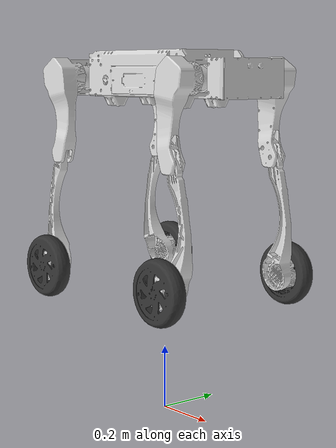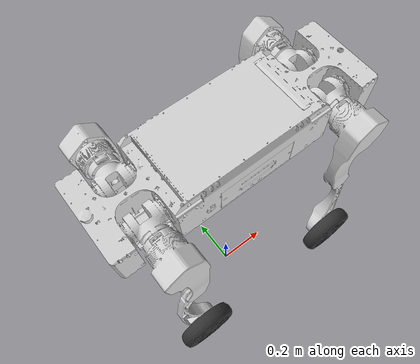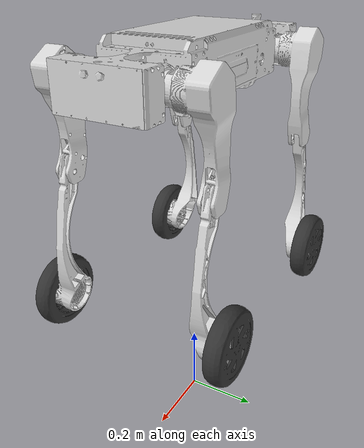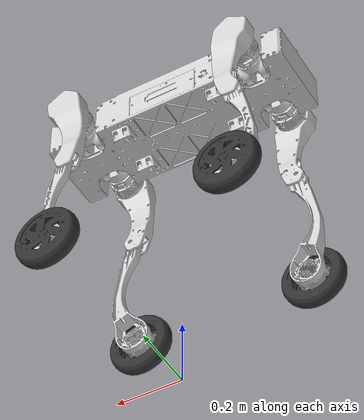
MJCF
<?xml version="1.0" ?>
<mujoco model="M1-robotdog-asm09">
  <compiler angle="radian" meshdir="./meshes/" autolimits="true"/>
  <option cone="elliptic" impratio="100" integrator="implicitfast" timestep="0.001"/>
  <visual>
    <global ellipsoidinertia="true"/>
  </visual>
  <default>
    <default class="sirius_wheel">
      <geom condim="6" solimp="0.5 0.95 0.001 0.5 2"/>
      <site group="5"/>
      <default class="abad">
        <motor ctrlrange="-40 40" forcerange="-40 40"/>
      </default>
      <default class="hip">
        <motor ctrlrange="-40 40" forcerange="-40 40"/>
      </default>
      <default class="knee">
        <motor ctrlrange="-100 100" forcerange="-100 100"/>
      </default>
      <default class="wheel">
        <motor ctrlrange="-40 40" forcerange="-40 40"/>
      </default>
      <default class="visual">
        <geom type="mesh" contype="0" conaffinity="0" group="2"/>
      </default>
      <default class="collision">
        <!-- Original M1 collision friction was implicit MuJoCo default: 1 0.005 0.0001 -->
        <!-- M20-aligned friction test: 1 0.01 0.001 -->
        <geom group="3" friction="1 0.01 0.001"/>
      </default>
    </default>
  </default>
  <asset>
    <mesh name="trunk" file="trunk.STL"/>
    <mesh name="LF_ABAD_Link" file="LF_ABAD_Link.STL"/>
    <mesh name="LF_THIGH_Link" file="LF_THIGH_Link.STL"/>
    <mesh name="LF_SHANK_Link" file="LF_SHANK_Link.STL"/>
    <mesh name="LF_FOOT_Link" file="LF_FOOT_Link.STL"/>
    <mesh name="RF_ABAD_Link" file="RF_ABAD_Link.STL"/>
    <mesh name="RF_THIGH_Link" file="RF_THIGH_Link.STL"/>
    <mesh name="RF_SHANK_Link" file="RF_SHANK_Link.STL"/>
    <mesh name="RF_FOOT_Link" file="RF_FOOT_Link.STL"/>
    <mesh name="LH_ABAD_Link" file="LH_ABAD_Link.STL"/>
    <mesh name="LH_THIGH_Link" file="LH_THIGH_Link.STL"/>
    <mesh name="LH_SHANK_Link" file="LH_SHANK_Link.STL"/>
    <mesh name="LH_FOOT_Link" file="LH_FOOT_Link.STL"/>
    <mesh name="RH_ABAD_Link" file="RH_ABAD_Link.STL"/>
    <mesh name="RH_THIGH_Link" file="RH_THIGH_Link.STL"/>
    <mesh name="RH_SHANK_Link" file="RH_SHANK_Link.STL"/>
    <mesh name="RH_FOOT_Link" file="RH_FOOT_Link.STL"/>
    <material name="black" rgba="0.0 0.0 0.0 1.0"/>
    <material name="light_grey" rgba="0.85 0.85 0.85 1.0"/>
    <material name="grey" rgba="0.2 0.2 0.2 1.0"/>
  </asset>
  <worldbody>
    <body name="trunk" pos="0 0 1.0" childclass="sirius_wheel">
      <camera name="tracking" mode="trackcom" pos="0 -1 0.8" xyaxes="1 0 0 0 1 1"/>
      <joint name="floating_base_joint" type="free" limited="false" actuatorfrclimited="false"/>
      <site name="imu" pos="0 0 0"/>
      <inertial pos="0.0012616 5.2895e-05 0.025714" mass="13.9" fullinertia="0.047768 0.43376 0.47392 5.3367e-06 -1.422e-06 7.6034e-06"/>
      <geom class="visual" mesh="trunk" material="light_grey"/>
      <geom class="collision" type="box" pos="0 0 0.06" size="0.2 0.125 0.08"/>
      <geom class="collision" type="box" pos="0.37 0 0.06" size="0.03 0.12 0.055"/>
      <geom class="collision" type="box" pos="-0.37 0 0.06" size="0.03 0.12 0.055"/>
      <body name="RF_abad_link" pos="0.28614 -0.06 0.058">
        <joint name="RF_HAA" pos="0 0 0" axis="1 0 0" range="-1.570796 1.134464" actuatorfrcrange="-40 40"/>
        <inertial pos="-2.5854e-05 -0.014876 -0.00063077" mass="3.325" fullinertia="0.0030921 0.0022587 0.0021107 -2.5247e-06 -1.0139e-05 1.3093e-06"/>
        <geom class="visual" mesh="RF_ABAD_Link" material="light_grey"/>
        <geom class="collision" type="cylinder" pos="0 0 0" quat="0.707107 0 0.707107 0" size="0.033 0.04"/>
        <body name="RF_thigh_link" pos="0 -0.061 0">
          <joint name="RF_HFE" pos="0 0 0" axis="0 1 0" range="-1.201135 4.156458" actuatorfrcrange="-40 40"/>
          <inertial pos="-0.010605 -0.056769 -0.06102" mass="2.515" fullinertia="0.016911 0.019346 0.0027816 -1.0748e-05 -0.0015773 -4.6592e-05"/>
          <geom class="visual" mesh="RF_THIGH_Link" material="light_grey"/>
          <geom class="collision" type="cylinder" pos="0 -0.058 0" quat="0.707107 0.707107 0 0" size="0.046 0.0475"/>
          <geom class="collision" type="box" pos="-0.024 -0.078 -0.12" quat="0.707107 0 0.707107 0" size="0.06 0.015 0.02"/>
          <body name="RF_shank_link" pos="0 -0.0778 -0.23848">
            <joint name="RF_KNEE" pos="0 0 0" axis="0 1 0" range="-2.617994 -0.680678" actuatorfrcrange="-100 100"/>
            <inertial pos="0.0092708 -0.023991 -0.28836" mass="1.578" fullinertia="0.012757 0.013714 0.001252 -3.6897e-05 0.0003 -0.0002993"/>
            <geom class="visual" mesh="RF_SHANK_Link" material="light_grey"/>
            <geom class="collision" type="box" pos="0.033 0 -0.14" quat="0.780707 0 0.624897 0" size="0.0775 0.013 0.013"/>
            <geom class="collision" type="box" pos="0.028 0 -0.27" quat="0.581683 0 0.813416 0" size="0.043 0.0165 0.0175"/>
            <body name="RF_FOOT_link" pos="0 -0.07855 -0.36538">
              <joint name="RF_WHEEL" pos="0 0 0" axis="0 1 0" limited="false" actuatorfrcrange="-40 40"/>
              <inertial pos="-2.607e-06 0.021187 -2.5561e-07" mass="0.856" fullinertia="0.0030911 0.0059162 0.0030898 1.6913e-08 2.1053e-07 2.0046e-09"/>
              <geom class="visual" mesh="RF_FOOT_Link" material="grey"/>
              <geom class="collision" type="cylinder" pos="0 0.02325 0" quat="0.707107 0.707107 0 0" size="0.095 0.0225"/>
            </body>
          </body>
        </body>
      </body>
      <body name="LF_abad_link" pos="0.28614 0.06 0.058">
        <joint name="LF_HAA" pos="0 0 0" axis="1 0 0" range="-1.134464 1.570796" actuatorfrcrange="-40 40"/>
        <inertial pos="-2.5841e-05 0.014876 0.00063077" mass="3.325" fullinertia="0.0030921 0.0022587 0.0021107 2.5247e-06 1.0139e-05 1.3093e-06"/>
        <geom class="visual" mesh="LF_ABAD_Link" material="light_grey"/>
        <geom class="collision" type="cylinder" pos="0 0 0" quat="0.707107 0 0.707107 0" size="0.033 0.04"/>
        <body name="LF_thigh_link" pos="0 0.063 0">
          <joint name="LF_HFE" pos="0 0 0" axis="0 1 0" range="-1.201135 4.156458" actuatorfrcrange="-40 40"/>
          <inertial pos="-0.010007 0.05226 -0.058836" mass="2.515" fullinertia="0.014475 0.016621 0.0024626 3.5191e-05 -0.0013218 9.9535e-05"/>
          <geom class="visual" mesh="LF_THIGH_Link" material="light_grey"/>
          <geom class="collision" type="cylinder" pos="0 0.058 0" quat="0.707107 0.707107 0 0" size="0.046 0.0475"/>
          <geom class="collision" type="box" pos="-0.024 0.078 -0.12" quat="0.707107 0 0.707107 0" size="0.06 0.015 0.02"/>
          <body name="LF_shank_link" pos="0 0.0778 -0.23848">
            <joint name="LF_KNEE" pos="0 0 0" axis="0 1 0" range="-2.617994 -0.680678" actuatorfrcrange="-100 100"/>
            <inertial pos="0.008931 0.023979 -0.2881" mass="1.578" fullinertia="0.012778 0.013738 0.0012546 3.3951e-05 0.0003029 0.00030089"/>
            <geom class="visual" mesh="LF_SHANK_Link" material="light_grey"/>
            <geom class="collision" type="box" pos="0.033 0 -0.14" quat="0.780707 0 0.624897 0" size="0.0775 0.013 0.013"/>
            <geom class="collision" type="box" pos="0.028 0 -0.27" quat="0.581683 0 0.813416 0" size="0.043 0.0165 0.0175"/>
            <body name="LF_FOOT_link" pos="0 0.07855 -0.36538">
              <joint name="LF_WHEEL" pos="0 0 0" axis="0 1 0" limited="false" actuatorfrcrange="-40 40"/>
              <inertial pos="2.6076e-06 -0.021187 -2.4862e-07" mass="0.856" fullinertia="0.0030911 0.0059162 0.0030898 1.6918e-08 -2.0692e-07 -1.9592e-09"/>
              <geom class="visual" mesh="LF_FOOT_Link" material="grey"/>
              <geom class="collision" type="cylinder" pos="0 -0.02325 0.00011" quat="0.707107 0.707107 0 0" size="0.095 0.0225"/>
            </body>
          </body>
        </body>
      </body>
      <body name="RH_abad_link" pos="-0.28586 -0.06 0.058">
        <joint name="RH_HAA" pos="0 0 0" axis="1 0 0" range="-1.570796 1.134464" actuatorfrcrange="-40 40"/>
        <inertial pos="-2.5841e-05 -0.014876 -0.00063077" mass="3.325" fullinertia="0.0030921 0.0022587 0.0021107 -2.5247e-06 -1.0139e-05 1.3093e-06"/>
        <geom class="visual" mesh="RH_ABAD_Link" material="light_grey"/>
        <geom class="collision" type="cylinder" pos="0 0 0" quat="0.707107 0 0.707107 0" size="0.033 0.04"/>
        <body name="RH_thigh_link" pos="0 -0.063 0">
          <joint name="RH_HFE" pos="0 0 0" axis="0 1 0" range="-4.156458 1.201135" actuatorfrcrange="-40 40"/>
          <inertial pos="0.010007 -0.05226 -0.058836" mass="2.515" fullinertia="0.014475 0.016621 0.0024626 3.5191e-05 0.0013218 -9.9535e-05"/>
          <geom class="visual" mesh="RH_THIGH_Link" material="light_grey"/>
          <geom class="collision" type="cylinder" pos="0 -0.058 0" quat="0.707107 0.707107 0 0" size="0.046 0.0475"/>
          <geom class="collision" type="box" pos="0.024 -0.078 -0.12" quat="0.707107 0 -0.707107 0" size="0.06 0.015 0.02"/>
          <body name="RH_shank_link" pos="0 -0.0778 -0.23848">
            <joint name="RH_KNEE" pos="0 0 0" axis="0 1 0" range="0.680678 2.617994" actuatorfrcrange="-100 100"/>
            <inertial pos="-0.008931 -0.023979 -0.2881" mass="1.578" fullinertia="0.012778 0.013738 0.0012546 3.3951e-05 -0.0003029 -0.00030089"/>
            <geom class="visual" mesh="RH_SHANK_Link" material="light_grey"/>
            <geom class="collision" type="box" pos="-0.033 0 -0.14" quat="0.780707 0 -0.624897 0" size="0.0775 0.013 0.013"/>
            <geom class="collision" type="box" pos="-0.028 0 -0.27" quat="0.581683 0 -0.813416 0" size="0.043 0.0165 0.0175"/>
            <body name="RH_FOOT_link" pos="0 -0.07855 -0.36538">
              <joint name="RH_WHEEL" pos="0 0 0" axis="0 1 0" limited="false" actuatorfrcrange="-40 40"/>
              <inertial pos="-2.6005e-06 0.021187 -3.1438e-07" mass="0.856" fullinertia="0.0030911 0.0059162 0.0030898 1.6863e-08 2.4066e-07 2.3857e-09"/>
              <geom class="visual" mesh="RH_FOOT_Link" material="grey"/>
              <geom class="collision" type="cylinder" pos="0 0.02325 0" quat="0.707107 0.707107 0 0" size="0.095 0.0225"/>
            </body>
          </body>
        </body>
      </body>
      <body name="LH_abad_link" pos="-0.28586 0.06 0.058">
        <joint name="LH_HAA" pos="0 0 0" axis="1 0 0" range="-1.134464 1.570796" actuatorfrcrange="-40 40"/>
        <inertial pos="-2.5841e-05 0.014876 0.00063077" mass="3.325" fullinertia="0.0030921 0.0022587 0.0021107 2.5247e-06 1.0139e-05 1.3093e-06"/>
        <geom class="visual" mesh="LH_ABAD_Link" material="light_grey"/>
        <geom class="collision" type="cylinder" pos="0 0 0" quat="0.707107 0 0.707107 0" size="0.033 0.04"/>
        <body name="LH_thigh_link" pos="0 0.063 0">
          <joint name="LH_HFE" pos="0 0 0" axis="0 1 0" range="-4.156458 1.201135" actuatorfrcrange="-40 40"/>
          <inertial pos="0.010605 0.056769 -0.06102" mass="2.515" fullinertia="0.016911 0.019346 0.0027816 -1.0748e-05 0.0015773 4.6592e-05"/>
          <geom class="visual" mesh="LH_THIGH_Link" material="light_grey"/>
          <geom class="collision" type="cylinder" pos="0 0.058 0" quat="0.707107 0.707107 0 0" size="0.046 0.0475"/>
          <geom class="collision" type="box" pos="0.024 0.078 -0.12" quat="0.707107 0 -0.707107 0" size="0.06 0.015 0.02"/>
          <body name="LH_shank_link" pos="0 0.0778 -0.23848">
            <joint name="LH_KNEE" pos="0 0 0" axis="0 1 0" range="0.680678 2.617994" actuatorfrcrange="-100 100"/>
            <inertial pos="-0.0092708 0.023991 -0.28836" mass="1.578" fullinertia="0.012757 0.013714 0.001252 -3.6897e-05 -0.0003 0.0002993"/>
            <geom class="visual" mesh="LH_SHANK_Link" material="light_grey"/>
            <geom class="collision" type="box" pos="-0.033 0 -0.14" quat="0.780707 0 -0.624897 0" size="0.0775 0.013 0.013"/>
            <geom class="collision" type="box" pos="-0.028 0 -0.27" quat="0.581683 0 -0.813416 0" size="0.043 0.0165 0.0175"/>
            <body name="LH_FOOT_link" pos="0 0.07855 -0.36538">
              <joint name="LH_WHEEL" pos="0 0 0" axis="0 1 0" limited="false" actuatorfrcrange="-40 40"/>
              <inertial pos="2.607e-06 -0.021187 -2.5561e-07" mass="0.856" fullinertia="0.0030911 0.0059162 0.0030898 1.6913e-08 -2.1053e-07 -2.0046e-09"/>
              <geom class="visual" mesh="LH_FOOT_Link" material="grey"/>
              <geom class="collision" type="cylinder" pos="0.0001 -0.02325 0" quat="0.707107 0.707107 0 0" size="0.095 0.0225"/>
            </body>
          </body>
        </body>
      </body>
    </body>
  </worldbody>
  <actuator>
    <motor name="FR_ABAD" joint="RF_HAA" class="abad"/>
    <motor name="FR_HIP" joint="RF_HFE" class="hip"/>
    <motor name="FR_KNEE" joint="RF_KNEE" class="knee"/>
    <motor name="FL_ABAD" joint="LF_HAA" class="abad"/>
    <motor name="FL_HIP" joint="LF_HFE" class="hip"/>
    <motor name="FL_KNEE" joint="LF_KNEE" class="knee"/>
    <motor name="RR_ABAD" joint="RH_HAA" class="abad"/>
    <motor name="RR_HIP" joint="RH_HFE" class="hip"/>
    <motor name="RR_KNEE" joint="RH_KNEE" class="knee"/>
    <motor name="RL_ABAD" joint="LH_HAA" class="abad"/>
    <motor name="RL_HIP" joint="LH_HFE" class="hip"/>
    <motor name="RL_KNEE" joint="LH_KNEE" class="knee"/>
    <motor name="FR_WHEEL" joint="RF_WHEEL" class="wheel"/>
    <motor name="FL_WHEEL" joint="LF_WHEEL" class="wheel"/>
    <motor name="RR_WHEEL" joint="RH_WHEEL" class="wheel"/>
    <motor name="RL_WHEEL" joint="LH_WHEEL" class="wheel"/>
  </actuator>
  <sensor>
    <gyro name="body_gyro" site="imu"/>
    <framequat name="body_quat" objtype="site" objname="imu"/>
    <accelerometer name="body_acc" site="imu"/>
  </sensor>

  <keyframe>
        <key name="default_pos"
             qpos="0 0 0.54
                   1 0 0 0
                   0.0 0.8 -1.28 0.0
                   0.0 0.8 -1.28 0.0
                   0.0 -0.8 1.28 0.0
                   0.0 -0.8 1.28 0.0"/>
    </keyframe>
</mujoco>
